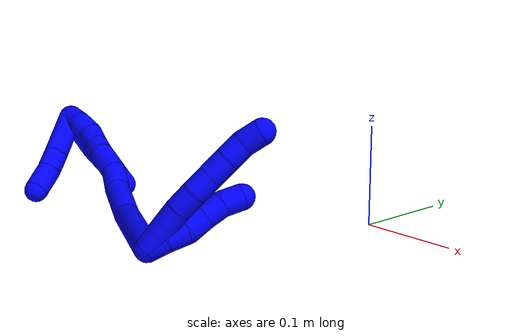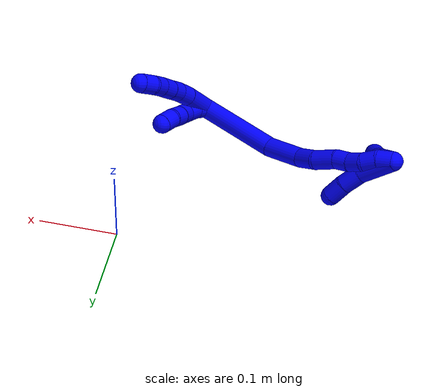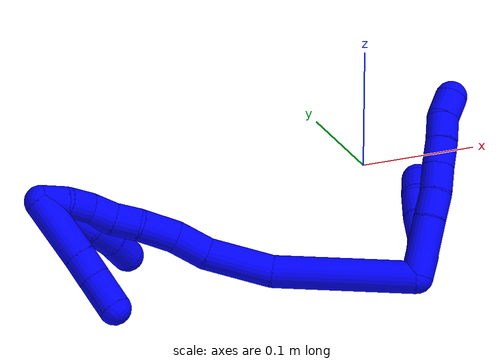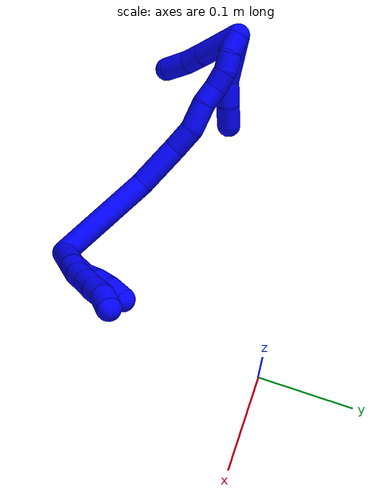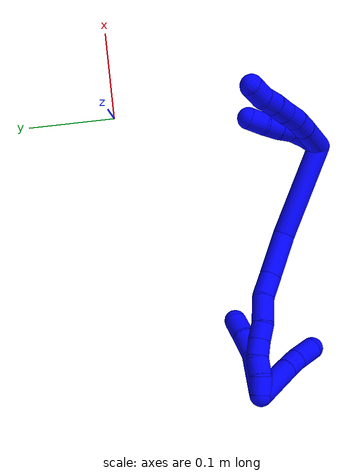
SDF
<sdf version="1.7">
 <world name="default">
  <model name="1">
   <static>0</static>
   <link name="1">
    <collision name="collision-cylinder-e_1_2_8">
     <pose>-0.000392 0.012512 -0.019524 -2.57166 -0.016896 0.057663</pose>
     <geometry><cylinder><radius>0.0125</radius><length>0.046384</length></cylinder></geometry>
     <surface>
      <friction><ode><mu>1.16</mu><mu2>1.16</mu2><slip1>0</slip1><slip2>0</slip2></ode></friction>
      <contact><ode><kp>1e+06</kp><kd>1</kd><max_vel>0</max_vel><min_depth>0.001</min_depth></ode></contact>
     </surface>
    </collision>
    <visual name="visual-cylinder-e_1_2_8">
     <pose>-0.000392 0.012512 -0.019524 -2.57166 -0.016896 0.057663</pose>
     <geometry><cylinder><radius>0.0125</radius><length>0.046384</length></cylinder></geometry>
     <material><ambient>0 0 1 1</ambient></material>
    </visual>
    <collision name="collision-cylinder-e_2_8_9">
     <pose>-0.001337 0.02993 -0.048445 -2.66052 -0.052131 0.211786</pose>
     <geometry><cylinder><radius>0.0125</radius><length>0.021231</length></cylinder></geometry>
     <surface>
      <friction><ode><mu>1.16</mu><mu2>1.16</mu2><slip1>0</slip1><slip2>0</slip2></ode></friction>
      <contact><ode><kp>1e+06</kp><kd>1</kd><max_vel>0</max_vel><min_depth>0.001</min_depth></ode></contact>
     </surface>
    </collision>
    <visual name="visual-cylinder-e_2_8_9">
     <pose>-0.001337 0.02993 -0.048445 -2.66052 -0.052131 0.211786</pose>
     <geometry><cylinder><radius>0.0125</radius><length>0.021231</length></cylinder></geometry>
     <material><ambient>0 0 1 1</ambient></material>
    </visual>
    <collision name="collision-cylinder-e_3_9_10">
     <pose>-0.00404 0.039583 -0.066922 -2.65971 -0.206851 0.799372</pose>
     <geometry><cylinder><radius>0.0125</radius><length>0.020937</length></cylinder></geometry>
     <surface>
      <friction><ode><mu>1.16</mu><mu2>1.16</mu2><slip1>0</slip1><slip2>0</slip2></ode></friction>
      <contact><ode><kp>1e+06</kp><kd>1</kd><max_vel>0</max_vel><min_depth>0.001</min_depth></ode></contact>
     </surface>
    </collision>
    <visual name="visual-cylinder-e_3_9_10">
     <pose>-0.00404 0.039583 -0.066922 -2.65971 -0.206851 0.799372</pose>
     <geometry><cylinder><radius>0.0125</radius><length>0.020937</length></cylinder></geometry>
     <material><ambient>0 0 1 1</ambient></material>
    </visual>
    <collision name="collision-cylinder-e_4_10_11">
     <pose>-0.007861 0.049113 -0.085365 -2.66948 -0.157618 0.634458</pose>
     <geometry><cylinder><radius>0.0125</radius><length>0.021293</length></cylinder></geometry>
     <surface>
      <friction><ode><mu>1.16</mu><mu2>1.16</mu2><slip1>0</slip1><slip2>0</slip2></ode></friction>
      <contact><ode><kp>1e+06</kp><kd>1</kd><max_vel>0</max_vel><min_depth>0.001</min_depth></ode></contact>
     </surface>
    </collision>
    <visual name="visual-cylinder-e_4_10_11">
     <pose>-0.007861 0.049113 -0.085365 -2.66948 -0.157618 0.634458</pose>
     <geometry><cylinder><radius>0.0125</radius><length>0.021293</length></cylinder></geometry>
     <material><ambient>0 0 1 1</ambient></material>
    </visual>
    <collision name="collision-cylinder-e_5_11_12">
     <pose>-0.012011 0.058305 -0.103384 -2.6703 -0.24982 0.963675</pose>
     <geometry><cylinder><radius>0.0125</radius><length>0.02005</length></cylinder></geometry>
     <surface>
      <friction><ode><mu>1.16</mu><mu2>1.16</mu2><slip1>0</slip1><slip2>0</slip2></ode></friction>
      <contact><ode><kp>1e+06</kp><kd>1</kd><max_vel>0</max_vel><min_depth>0.001</min_depth></ode></contact>
     </surface>
    </collision>
    <visual name="visual-cylinder-e_5_11_12">
     <pose>-0.012011 0.058305 -0.103384 -2.6703 -0.24982 0.963675</pose>
     <geometry><cylinder><radius>0.0125</radius><length>0.02005</length></cylinder></geometry>
     <material><ambient>0 0 1 1</ambient></material>
    </visual>
    <collision name="collision-cylinder-e_6_12_6">
     <pose>-0.01496 0.065067 -0.1218 -2.9052 -0.04683 0.389435</pose>
     <geometry><cylinder><radius>0.0125</radius><length>0.020105</length></cylinder></geometry>
     <surface>
      <friction><ode><mu>1.16</mu><mu2>1.16</mu2><slip1>0</slip1><slip2>0</slip2></ode></friction>
      <contact><ode><kp>1e+06</kp><kd>1</kd><max_vel>0</max_vel><min_depth>0.001</min_depth></ode></contact>
     </surface>
    </collision>
    <visual name="visual-cylinder-e_6_12_6">
     <pose>-0.01496 0.065067 -0.1218 -2.9052 -0.04683 0.389435</pose>
     <geometry><cylinder><radius>0.0125</radius><length>0.020105</length></cylinder></geometry>
     <material><ambient>0 0 1 1</ambient></material>
    </visual>
    <collision name="collision-cylinder-e_1_2_13">
     <pose>-0.002218 0.001406 -0.009649 -2.99691 -0.223646 1.99541</pose>
     <geometry><cylinder><radius>0.0125</radius><length>0.02</length></cylinder></geometry>
     <surface>
      <friction><ode><mu>1.16</mu><mu2>1.16</mu2><slip1>0</slip1><slip2>0</slip2></ode></friction>
      <contact><ode><kp>1e+06</kp><kd>1</kd><max_vel>0</max_vel><min_depth>0.001</min_depth></ode></contact>
     </surface>
    </collision>
    <visual name="visual-cylinder-e_1_2_13">
     <pose>-0.002218 0.001406 -0.009649 -2.99691 -0.223646 1.99541</pose>
     <geometry><cylinder><radius>0.0125</radius><length>0.02</length></cylinder></geometry>
     <material><ambient>0 0 1 1</ambient></material>
    </visual>
    <collision name="collision-cylinder-e_2_13_14">
     <pose>-0.008238 0.003368 -0.02853 -3.08143 -0.390051 2.83924</pose>
     <geometry><cylinder><radius>0.0125</radius><length>0.02</length></cylinder></geometry>
     <surface>
      <friction><ode><mu>1.16</mu><mu2>1.16</mu2><slip1>0</slip1><slip2>0</slip2></ode></friction>
      <contact><ode><kp>1e+06</kp><kd>1</kd><max_vel>0</max_vel><min_depth>0.001</min_depth></ode></contact>
     </surface>
    </collision>
    <visual name="visual-cylinder-e_2_13_14">
     <pose>-0.008238 0.003368 -0.02853 -3.08143 -0.390051 2.83924</pose>
     <geometry><cylinder><radius>0.0125</radius><length>0.02</length></cylinder></geometry>
     <material><ambient>0 0 1 1</ambient></material>
    </visual>
    <collision name="collision-cylinder-e_3_14_15">
     <pose>-0.017098 0.007351 -0.045679 -2.73312 -0.53028 1.8383</pose>
     <geometry><cylinder><radius>0.0125</radius><length>0.02</length></cylinder></geometry>
     <surface>
      <friction><ode><mu>1.16</mu><mu2>1.16</mu2><slip1>0</slip1><slip2>0</slip2></ode></friction>
      <contact><ode><kp>1e+06</kp><kd>1</kd><max_vel>0</max_vel><min_depth>0.001</min_depth></ode></contact>
     </surface>
    </collision>
    <visual name="visual-cylinder-e_3_14_15">
     <pose>-0.017098 0.007351 -0.045679 -2.73312 -0.53028 1.8383</pose>
     <geometry><cylinder><radius>0.0125</radius><length>0.02</length></cylinder></geometry>
     <material><ambient>0 0 1 1</ambient></material>
    </visual>
    <collision name="collision-cylinder-e_4_15_16">
     <pose>-0.026486 0.013578 -0.062164 -2.82559 -0.447842 1.92066</pose>
     <geometry><cylinder><radius>0.0125</radius><length>0.02</length></cylinder></geometry>
     <surface>
      <friction><ode><mu>1.16</mu><mu2>1.16</mu2><slip1>0</slip1><slip2>0</slip2></ode></friction>
      <contact><ode><kp>1e+06</kp><kd>1</kd><max_vel>0</max_vel><min_depth>0.001</min_depth></ode></contact>
     </surface>
    </collision>
    <visual name="visual-cylinder-e_4_15_16">
     <pose>-0.026486 0.013578 -0.062164 -2.82559 -0.447842 1.92066</pose>
     <geometry><cylinder><radius>0.0125</radius><length>0.02</length></cylinder></geometry>
     <material><ambient>0 0 1 1</ambient></material>
    </visual>
    <collision name="collision-cylinder-e_5_16_5">
     <pose>-0.035297 0.016427 -0.079671 -3.13626 -0.464571 3.11903</pose>
     <geometry><cylinder><radius>0.0125</radius><length>0.02</length></cylinder></geometry>
     <surface>
      <friction><ode><mu>1.16</mu><mu2>1.16</mu2><slip1>0</slip1><slip2>0</slip2></ode></friction>
      <contact><ode><kp>1e+06</kp><kd>1</kd><max_vel>0</max_vel><min_depth>0.001</min_depth></ode></contact>
     </surface>
    </collision>
    <visual name="visual-cylinder-e_5_16_5">
     <pose>-0.035297 0.016427 -0.079671 -3.13626 -0.464571 3.11903</pose>
     <geometry><cylinder><radius>0.0125</radius><length>0.02</length></cylinder></geometry>
     <material><ambient>0 0 1 1</ambient></material>
    </visual>
    <collision name="collision-cylinder-e_1_2_17">
     <pose>-0.04838 0.015195 0.021436 -0.616645 -1.07326 0.374459</pose>
     <geometry><cylinder><radius>0.0125</radius><length>0.11011</length></cylinder></geometry>
     <surface>
      <friction><ode><mu>1.16</mu><mu2>1.16</mu2><slip1>0</slip1><slip2>0</slip2></ode></friction>
      <contact><ode><kp>1e+06</kp><kd>1</kd><max_vel>0</max_vel><min_depth>0.001</min_depth></ode></contact>
     </surface>
    </collision>
    <visual name="visual-cylinder-e_1_2_17">
     <pose>-0.04838 0.015195 0.021436 -0.616645 -1.07326 0.374459</pose>
     <geometry><cylinder><radius>0.0125</radius><length>0.11011</length></cylinder></geometry>
     <material><ambient>0 0 1 1</ambient></material>
    </visual>
    <collision name="collision-cylinder-e_2_17_18">
     <pose>-0.117555 0.043529 0.050747 -1.03087 -0.935939 0.55773</pose>
     <geometry><cylinder><radius>0.0125</radius><length>0.051656</length></cylinder></geometry>
     <surface>
      <friction><ode><mu>1.16</mu><mu2>1.16</mu2><slip1>0</slip1><slip2>0</slip2></ode></friction>
      <contact><ode><kp>1e+06</kp><kd>1</kd><max_vel>0</max_vel><min_depth>0.001</min_depth></ode></contact>
     </surface>
    </collision>
    <visual name="visual-cylinder-e_2_17_18">
     <pose>-0.117555 0.043529 0.050747 -1.03087 -0.935939 0.55773</pose>
     <geometry><cylinder><radius>0.0125</radius><length>0.051656</length></cylinder></geometry>
     <material><ambient>0 0 1 1</ambient></material>
    </visual>
    <collision name="collision-cylinder-e_3_18_19">
     <pose>-0.148312 0.065984 0.060829 -1.3381 -0.80523 0.649637</pose>
     <geometry><cylinder><radius>0.0125</radius><length>0.027633</length></cylinder></geometry>
     <surface>
      <friction><ode><mu>1.16</mu><mu2>1.16</mu2><slip1>0</slip1><slip2>0</slip2></ode></friction>
      <contact><ode><kp>1e+06</kp><kd>1</kd><max_vel>0</max_vel><min_depth>0.001</min_depth></ode></contact>
     </surface>
    </collision>
    <visual name="visual-cylinder-e_3_18_19">
     <pose>-0.148312 0.065984 0.060829 -1.3381 -0.80523 0.649637</pose>
     <geometry><cylinder><radius>0.0125</radius><length>0.027633</length></cylinder></geometry>
     <material><ambient>0 0 1 1</ambient></material>
    </visual>
    <collision name="collision-cylinder-e_4_19_20">
     <pose>-0.166973 0.085902 0.069565 -1.01886 -0.609833 0.348069</pose>
     <geometry><cylinder><radius>0.0125</radius><length>0.030377</length></cylinder></geometry>
     <surface>
      <friction><ode><mu>1.16</mu><mu2>1.16</mu2><slip1>0</slip1><slip2>0</slip2></ode></friction>
      <contact><ode><kp>1e+06</kp><kd>1</kd><max_vel>0</max_vel><min_depth>0.001</min_depth></ode></contact>
     </surface>
    </collision>
    <visual name="visual-cylinder-e_4_19_20">
     <pose>-0.166973 0.085902 0.069565 -1.01886 -0.609833 0.348069</pose>
     <geometry><cylinder><radius>0.0125</radius><length>0.030377</length></cylinder></geometry>
     <material><ambient>0 0 1 1</ambient></material>
    </visual>
    <collision name="collision-cylinder-e_5_20_21">
     <pose>-0.183152 0.10195 0.079995 -0.94926 -0.840457 0.451361</pose>
     <geometry><cylinder><radius>0.0125</radius><length>0.020084</length></cylinder></geometry>
     <surface>
      <friction><ode><mu>1.16</mu><mu2>1.16</mu2><slip1>0</slip1><slip2>0</slip2></ode></friction>
      <contact><ode><kp>1e+06</kp><kd>1</kd><max_vel>0</max_vel><min_depth>0.001</min_depth></ode></contact>
     </surface>
    </collision>
    <visual name="visual-cylinder-e_5_20_21">
     <pose>-0.183152 0.10195 0.079995 -0.94926 -0.840457 0.451361</pose>
     <geometry><cylinder><radius>0.0125</radius><length>0.020084</length></cylinder></geometry>
     <material><ambient>0 0 1 1</ambient></material>
    </visual>
    <collision name="collision-cylinder-e_6_21_22">
     <pose>-0.196855 0.11452 0.087169 -1.13996 -0.670855 0.439644</pose>
     <geometry><cylinder><radius>0.0125</radius><length>0.020017</length></cylinder></geometry>
     <surface>
      <friction><ode><mu>1.16</mu><mu2>1.16</mu2><slip1>0</slip1><slip2>0</slip2></ode></friction>
      <contact><ode><kp>1e+06</kp><kd>1</kd><max_vel>0</max_vel><min_depth>0.001</min_depth></ode></contact>
     </surface>
    </collision>
    <visual name="visual-cylinder-e_6_21_22">
     <pose>-0.196855 0.11452 0.087169 -1.13996 -0.670855 0.439644</pose>
     <geometry><cylinder><radius>0.0125</radius><length>0.020017</length></cylinder></geometry>
     <material><ambient>0 0 1 1</ambient></material>
    </visual>
    <collision name="collision-cylinder-e_7_22_23">
     <pose>-0.207344 0.128835 0.095943 -0.918032 -0.440432 0.220364</pose>
     <geometry><cylinder><radius>0.0125</radius><length>0.020018</length></cylinder></geometry>
     <surface>
      <friction><ode><mu>1.16</mu><mu2>1.16</mu2><slip1>0</slip1><slip2>0</slip2></ode></friction>
      <contact><ode><kp>1e+06</kp><kd>1</kd><max_vel>0</max_vel><min_depth>0.001</min_depth></ode></contact>
     </surface>
    </collision>
    <visual name="visual-cylinder-e_7_22_23">
     <pose>-0.207344 0.128835 0.095943 -0.918032 -0.440432 0.220364</pose>
     <geometry><cylinder><radius>0.0125</radius><length>0.020018</length></cylinder></geometry>
     <material><ambient>0 0 1 1</ambient></material>
    </visual>
    <collision name="collision-cylinder-e_8_23_1">
     <pose>-0.217781 0.141201 0.10746 -0.710036 -0.66081 0.252944</pose>
     <geometry><cylinder><radius>0.0125</radius><length>0.020106</length></cylinder></geometry>
     <surface>
      <friction><ode><mu>1.16</mu><mu2>1.16</mu2><slip1>0</slip1><slip2>0</slip2></ode></friction>
      <contact><ode><kp>1e+06</kp><kd>1</kd><max_vel>0</max_vel><min_depth>0.001</min_depth></ode></contact>
     </surface>
    </collision>
    <visual name="visual-cylinder-e_8_23_1">
     <pose>-0.217781 0.141201 0.10746 -0.710036 -0.66081 0.252944</pose>
     <geometry><cylinder><radius>0.0125</radius><length>0.020106</length></cylinder></geometry>
     <material><ambient>0 0 1 1</ambient></material>
    </visual>
    <collision name="collision-cylinder-e_1_1_24">
     <pose>-0.215458 0.125613 0.103532 2.01758 0.353445 0.552656</pose>
     <geometry><cylinder><radius>0.0125</radius><length>0.049077</length></cylinder></geometry>
     <surface>
      <friction><ode><mu>1.16</mu><mu2>1.16</mu2><slip1>0</slip1><slip2>0</slip2></ode></friction>
      <contact><ode><kp>1e+06</kp><kd>1</kd><max_vel>0</max_vel><min_depth>0.001</min_depth></ode></contact>
     </surface>
    </collision>
    <visual name="visual-cylinder-e_1_1_24">
     <pose>-0.215458 0.125613 0.103532 2.01758 0.353445 0.552656</pose>
     <geometry><cylinder><radius>0.0125</radius><length>0.049077</length></cylinder></geometry>
     <material><ambient>0 0 1 1</ambient></material>
    </visual>
    <collision name="collision-cylinder-e_2_24_25">
     <pose>-0.205684 0.093059 0.087505 2.04685 0.096155 0.157558</pose>
     <geometry><cylinder><radius>0.0125</radius><length>0.026657</length></cylinder></geometry>
     <surface>
      <friction><ode><mu>1.16</mu><mu2>1.16</mu2><slip1>0</slip1><slip2>0</slip2></ode></friction>
      <contact><ode><kp>1e+06</kp><kd>1</kd><max_vel>0</max_vel><min_depth>0.001</min_depth></ode></contact>
     </surface>
    </collision>
    <visual name="visual-cylinder-e_2_24_25">
     <pose>-0.205684 0.093059 0.087505 2.04685 0.096155 0.157558</pose>
     <geometry><cylinder><radius>0.0125</radius><length>0.026657</length></cylinder></geometry>
     <material><ambient>0 0 1 1</ambient></material>
    </visual>
    <collision name="collision-cylinder-e_3_25_4">
     <pose>-0.203892 0.069872 0.077292 1.91877 0.042269 0.060288</pose>
     <geometry><cylinder><radius>0.0125</radius><length>0.024266</length></cylinder></geometry>
     <surface>
      <friction><ode><mu>1.16</mu><mu2>1.16</mu2><slip1>0</slip1><slip2>0</slip2></ode></friction>
      <contact><ode><kp>1e+06</kp><kd>1</kd><max_vel>0</max_vel><min_depth>0.001</min_depth></ode></contact>
     </surface>
    </collision>
    <visual name="visual-cylinder-e_3_25_4">
     <pose>-0.203892 0.069872 0.077292 1.91877 0.042269 0.060288</pose>
     <geometry><cylinder><radius>0.0125</radius><length>0.024266</length></cylinder></geometry>
     <material><ambient>0 0 1 1</ambient></material>
    </visual>
    <collision name="collision-cylinder-e_1_1_26">
     <pose>-0.207294 0.129239 0.122354 1.0929 0.712087 0.444904</pose>
     <geometry><cylinder><radius>0.0125</radius><length>0.050984</length></cylinder></geometry>
     <surface>
      <friction><ode><mu>1.16</mu><mu2>1.16</mu2><slip1>0</slip1><slip2>0</slip2></ode></friction>
      <contact><ode><kp>1e+06</kp><kd>1</kd><max_vel>0</max_vel><min_depth>0.001</min_depth></ode></contact>
     </surface>
    </collision>
    <visual name="visual-cylinder-e_1_1_26">
     <pose>-0.207294 0.129239 0.122354 1.0929 0.712087 0.444904</pose>
     <geometry><cylinder><radius>0.0125</radius><length>0.050984</length></cylinder></geometry>
     <material><ambient>0 0 1 1</ambient></material>
    </visual>
    <collision name="collision-cylinder-e_2_26_27">
     <pose>-0.183961 0.105243 0.135141 1.05269 0.701837 0.419142</pose>
     <geometry><cylinder><radius>0.0125</radius><length>0.020683</length></cylinder></geometry>
     <surface>
      <friction><ode><mu>1.16</mu><mu2>1.16</mu2><slip1>0</slip1><slip2>0</slip2></ode></friction>
      <contact><ode><kp>1e+06</kp><kd>1</kd><max_vel>0</max_vel><min_depth>0.001</min_depth></ode></contact>
     </surface>
    </collision>
    <visual name="visual-cylinder-e_2_26_27">
     <pose>-0.183961 0.105243 0.135141 1.05269 0.701837 0.419142</pose>
     <geometry><cylinder><radius>0.0125</radius><length>0.020683</length></cylinder></geometry>
     <material><ambient>0 0 1 1</ambient></material>
    </visual>
    <collision name="collision-cylinder-e_3_27_3">
     <pose>-0.167334 0.090411 0.145228 0.91157 0.778725 0.39698</pose>
     <geometry><cylinder><radius>0.0125</radius><length>0.028333</length></cylinder></geometry>
     <surface>
      <friction><ode><mu>1.16</mu><mu2>1.16</mu2><slip1>0</slip1><slip2>0</slip2></ode></friction>
      <contact><ode><kp>1e+06</kp><kd>1</kd><max_vel>0</max_vel><min_depth>0.001</min_depth></ode></contact>
     </surface>
    </collision>
    <visual name="visual-cylinder-e_3_27_3">
     <pose>-0.167334 0.090411 0.145228 0.91157 0.778725 0.39698</pose>
     <geometry><cylinder><radius>0.0125</radius><length>0.028333</length></cylinder></geometry>
     <material><ambient>0 0 1 1</ambient></material>
    </visual>
    <collision name="collision-sphere-3">
     <pose>-0.157384 0.08244 0.151404 0 -0 0</pose>
     <geometry><sphere><radius>0.0125</radius></sphere></geometry>
     <surface>
      <friction><ode><mu>1.16</mu><mu2>1.16</mu2><slip1>0</slip1><slip2>0</slip2></ode></friction>
      <contact><ode><kp>1e+06</kp><kd>1</kd><max_vel>0</max_vel><min_depth>0.001</min_depth></ode></contact>
     </surface>
    </collision>
    <visual name="visual-sphere-3">
     <pose>-0.157384 0.08244 0.151404 0 -0 0</pose>
     <geometry><sphere><radius>0.0125</radius></sphere></geometry>
     <material><ambient>0 0 1 1</ambient></material>
    </visual>
    <collision name="collision-sphere-27">
     <pose>-0.177284 0.098382 0.139052 0 -0 0</pose>
     <geometry><sphere><radius>0.0125</radius></sphere></geometry>
     <surface>
      <friction><ode><mu>1.16</mu><mu2>1.16</mu2><slip1>0</slip1><slip2>0</slip2></ode></friction>
      <contact><ode><kp>1e+06</kp><kd>1</kd><max_vel>0</max_vel><min_depth>0.001</min_depth></ode></contact>
     </surface>
    </collision>
    <visual name="visual-sphere-27">
     <pose>-0.177284 0.098382 0.139052 0 -0 0</pose>
     <geometry><sphere><radius>0.0125</radius></sphere></geometry>
     <material><ambient>0 0 1 1</ambient></material>
    </visual>
    <collision name="collision-sphere-26">
     <pose>-0.190637 0.112104 0.13123 0 -0 0</pose>
     <geometry><sphere><radius>0.0125</radius></sphere></geometry>
     <surface>
      <friction><ode><mu>1.16</mu><mu2>1.16</mu2><slip1>0</slip1><slip2>0</slip2></ode></friction>
      <contact><ode><kp>1e+06</kp><kd>1</kd><max_vel>0</max_vel><min_depth>0.001</min_depth></ode></contact>
     </surface>
    </collision>
    <visual name="visual-sphere-26">
     <pose>-0.190637 0.112104 0.13123 0 -0 0</pose>
     <geometry><sphere><radius>0.0125</radius></sphere></geometry>
     <material><ambient>0 0 1 1</ambient></material>
    </visual>
    <collision name="collision-sphere-4">
     <pose>-0.203379 0.058476 0.073158 0 -0 0</pose>
     <geometry><sphere><radius>0.0125</radius></sphere></geometry>
     <surface>
      <friction><ode><mu>1.16</mu><mu2>1.16</mu2><slip1>0</slip1><slip2>0</slip2></ode></friction>
      <contact><ode><kp>1e+06</kp><kd>1</kd><max_vel>0</max_vel><min_depth>0.001</min_depth></ode></contact>
     </surface>
    </collision>
    <visual name="visual-sphere-4">
     <pose>-0.203379 0.058476 0.073158 0 -0 0</pose>
     <geometry><sphere><radius>0.0125</radius></sphere></geometry>
     <material><ambient>0 0 1 1</ambient></material>
    </visual>
    <collision name="collision-sphere-25">
     <pose>-0.204405 0.081268 0.081426 0 -0 0</pose>
     <geometry><sphere><radius>0.0125</radius></sphere></geometry>
     <surface>
      <friction><ode><mu>1.16</mu><mu2>1.16</mu2><slip1>0</slip1><slip2>0</slip2></ode></friction>
      <contact><ode><kp>1e+06</kp><kd>1</kd><max_vel>0</max_vel><min_depth>0.001</min_depth></ode></contact>
     </surface>
    </collision>
    <visual name="visual-sphere-25">
     <pose>-0.204405 0.081268 0.081426 0 -0 0</pose>
     <geometry><sphere><radius>0.0125</radius></sphere></geometry>
     <material><ambient>0 0 1 1</ambient></material>
    </visual>
    <collision name="collision-sphere-24">
     <pose>-0.206964 0.104851 0.093585 0 -0 0</pose>
     <geometry><sphere><radius>0.0125</radius></sphere></geometry>
     <surface>
      <friction><ode><mu>1.16</mu><mu2>1.16</mu2><slip1>0</slip1><slip2>0</slip2></ode></friction>
      <contact><ode><kp>1e+06</kp><kd>1</kd><max_vel>0</max_vel><min_depth>0.001</min_depth></ode></contact>
     </surface>
    </collision>
    <visual name="visual-sphere-24">
     <pose>-0.206964 0.104851 0.093585 0 -0 0</pose>
     <geometry><sphere><radius>0.0125</radius></sphere></geometry>
     <material><ambient>0 0 1 1</ambient></material>
    </visual>
    <collision name="collision-sphere-1">
     <pose>-0.223951 0.146375 0.113479 0 -0 0</pose>
     <geometry><sphere><radius>0.0125</radius></sphere></geometry>
     <surface>
      <friction><ode><mu>1.16</mu><mu2>1.16</mu2><slip1>0</slip1><slip2>0</slip2></ode></friction>
      <contact><ode><kp>1e+06</kp><kd>1</kd><max_vel>0</max_vel><min_depth>0.001</min_depth></ode></contact>
     </surface>
    </collision>
    <visual name="visual-sphere-1">
     <pose>-0.223951 0.146375 0.113479 0 -0 0</pose>
     <geometry><sphere><radius>0.0125</radius></sphere></geometry>
     <material><ambient>0 0 1 1</ambient></material>
    </visual>
    <collision name="collision-sphere-23">
     <pose>-0.211611 0.136028 0.101442 0 -0 0</pose>
     <geometry><sphere><radius>0.0125</radius></sphere></geometry>
     <surface>
      <friction><ode><mu>1.16</mu><mu2>1.16</mu2><slip1>0</slip1><slip2>0</slip2></ode></friction>
      <contact><ode><kp>1e+06</kp><kd>1</kd><max_vel>0</max_vel><min_depth>0.001</min_depth></ode></contact>
     </surface>
    </collision>
    <visual name="visual-sphere-23">
     <pose>-0.211611 0.136028 0.101442 0 -0 0</pose>
     <geometry><sphere><radius>0.0125</radius></sphere></geometry>
     <material><ambient>0 0 1 1</ambient></material>
    </visual>
    <collision name="collision-sphere-22">
     <pose>-0.203077 0.121643 0.090443 0 -0 0</pose>
     <geometry><sphere><radius>0.0125</radius></sphere></geometry>
     <surface>
      <friction><ode><mu>1.16</mu><mu2>1.16</mu2><slip1>0</slip1><slip2>0</slip2></ode></friction>
      <contact><ode><kp>1e+06</kp><kd>1</kd><max_vel>0</max_vel><min_depth>0.001</min_depth></ode></contact>
     </surface>
    </collision>
    <visual name="visual-sphere-22">
     <pose>-0.203077 0.121643 0.090443 0 -0 0</pose>
     <geometry><sphere><radius>0.0125</radius></sphere></geometry>
     <material><ambient>0 0 1 1</ambient></material>
    </visual>
    <collision name="collision-sphere-21">
     <pose>-0.190633 0.107396 0.083895 0 -0 0</pose>
     <geometry><sphere><radius>0.0125</radius></sphere></geometry>
     <surface>
      <friction><ode><mu>1.16</mu><mu2>1.16</mu2><slip1>0</slip1><slip2>0</slip2></ode></friction>
      <contact><ode><kp>1e+06</kp><kd>1</kd><max_vel>0</max_vel><min_depth>0.001</min_depth></ode></contact>
     </surface>
    </collision>
    <visual name="visual-sphere-21">
     <pose>-0.190633 0.107396 0.083895 0 -0 0</pose>
     <geometry><sphere><radius>0.0125</radius></sphere></geometry>
     <material><ambient>0 0 1 1</ambient></material>
    </visual>
    <collision name="collision-sphere-12">
     <pose>-0.014489 0.062715 -0.112038 0 -0 0</pose>
     <geometry><sphere><radius>0.0125</radius></sphere></geometry>
     <surface>
      <friction><ode><mu>1.16</mu><mu2>1.16</mu2><slip1>0</slip1><slip2>0</slip2></ode></friction>
      <contact><ode><kp>1e+06</kp><kd>1</kd><max_vel>0</max_vel><min_depth>0.001</min_depth></ode></contact>
     </surface>
    </collision>
    <visual name="visual-sphere-12">
     <pose>-0.014489 0.062715 -0.112038 0 -0 0</pose>
     <geometry><sphere><radius>0.0125</radius></sphere></geometry>
     <material><ambient>0 0 1 1</ambient></material>
    </visual>
    <collision name="collision-sphere-11">
     <pose>-0.009532 0.053895 -0.094729 0 -0 0</pose>
     <geometry><sphere><radius>0.0125</radius></sphere></geometry>
     <surface>
      <friction><ode><mu>1.16</mu><mu2>1.16</mu2><slip1>0</slip1><slip2>0</slip2></ode></friction>
      <contact><ode><kp>1e+06</kp><kd>1</kd><max_vel>0</max_vel><min_depth>0.001</min_depth></ode></contact>
     </surface>
    </collision>
    <visual name="visual-sphere-11">
     <pose>-0.009532 0.053895 -0.094729 0 -0 0</pose>
     <geometry><sphere><radius>0.0125</radius></sphere></geometry>
     <material><ambient>0 0 1 1</ambient></material>
    </visual>
    <collision name="collision-sphere-10">
     <pose>-0.00619 0.044332 -0.076001 0 -0 0</pose>
     <geometry><sphere><radius>0.0125</radius></sphere></geometry>
     <surface>
      <friction><ode><mu>1.16</mu><mu2>1.16</mu2><slip1>0</slip1><slip2>0</slip2></ode></friction>
      <contact><ode><kp>1e+06</kp><kd>1</kd><max_vel>0</max_vel><min_depth>0.001</min_depth></ode></contact>
     </surface>
    </collision>
    <visual name="visual-sphere-10">
     <pose>-0.00619 0.044332 -0.076001 0 -0 0</pose>
     <geometry><sphere><radius>0.0125</radius></sphere></geometry>
     <material><ambient>0 0 1 1</ambient></material>
    </visual>
    <collision name="collision-sphere-9">
     <pose>-0.00189 0.034835 -0.057843 0 -0 0</pose>
     <geometry><sphere><radius>0.0125</radius></sphere></geometry>
     <surface>
      <friction><ode><mu>1.16</mu><mu2>1.16</mu2><slip1>0</slip1><slip2>0</slip2></ode></friction>
      <contact><ode><kp>1e+06</kp><kd>1</kd><max_vel>0</max_vel><min_depth>0.001</min_depth></ode></contact>
     </surface>
    </collision>
    <visual name="visual-sphere-9">
     <pose>-0.00189 0.034835 -0.057843 0 -0 0</pose>
     <geometry><sphere><radius>0.0125</radius></sphere></geometry>
     <material><ambient>0 0 1 1</ambient></material>
    </visual>
    <collision name="collision-sphere-2">
     <geometry><sphere><radius>0.0125</radius></sphere></geometry>
     <surface>
      <friction><ode><mu>1.16</mu><mu2>1.16</mu2><slip1>0</slip1><slip2>0</slip2></ode></friction>
      <contact><ode><kp>1e+06</kp><kd>1</kd><max_vel>0</max_vel><min_depth>0.001</min_depth></ode></contact>
     </surface>
    </collision>
    <visual name="visual-sphere-2">
     <geometry><sphere><radius>0.0125</radius></sphere></geometry>
     <material><ambient>0 0 1 1</ambient></material>
    </visual>
    <collision name="collision-sphere-19">
     <pose>-0.158274 0.0753 0.063037 0 -0 0</pose>
     <geometry><sphere><radius>0.0125</radius></sphere></geometry>
     <surface>
      <friction><ode><mu>1.16</mu><mu2>1.16</mu2><slip1>0</slip1><slip2>0</slip2></ode></friction>
      <contact><ode><kp>1e+06</kp><kd>1</kd><max_vel>0</max_vel><min_depth>0.001</min_depth></ode></contact>
     </surface>
    </collision>
    <visual name="visual-sphere-19">
     <pose>-0.158274 0.0753 0.063037 0 -0 0</pose>
     <geometry><sphere><radius>0.0125</radius></sphere></geometry>
     <material><ambient>0 0 1 1</ambient></material>
    </visual>
    <collision name="collision-sphere-8">
     <pose>-0.000784 0.025024 -0.039047 0 -0 0</pose>
     <geometry><sphere><radius>0.0125</radius></sphere></geometry>
     <surface>
      <friction><ode><mu>1.16</mu><mu2>1.16</mu2><slip1>0</slip1><slip2>0</slip2></ode></friction>
      <contact><ode><kp>1e+06</kp><kd>1</kd><max_vel>0</max_vel><min_depth>0.001</min_depth></ode></contact>
     </surface>
    </collision>
    <visual name="visual-sphere-8">
     <pose>-0.000784 0.025024 -0.039047 0 -0 0</pose>
     <geometry><sphere><radius>0.0125</radius></sphere></geometry>
     <material><ambient>0 0 1 1</ambient></material>
    </visual>
    <collision name="collision-sphere-6">
     <pose>-0.01543 0.067419 -0.131563 0 -0 0</pose>
     <geometry><sphere><radius>0.0125</radius></sphere></geometry>
     <surface>
      <friction><ode><mu>1.16</mu><mu2>1.16</mu2><slip1>0</slip1><slip2>0</slip2></ode></friction>
      <contact><ode><kp>1e+06</kp><kd>1</kd><max_vel>0</max_vel><min_depth>0.001</min_depth></ode></contact>
     </surface>
    </collision>
    <visual name="visual-sphere-6">
     <pose>-0.01543 0.067419 -0.131563 0 -0 0</pose>
     <geometry><sphere><radius>0.0125</radius></sphere></geometry>
     <material><ambient>0 0 1 1</ambient></material>
    </visual>
    <collision name="collision-sphere-13">
     <pose>-0.004436 0.002812 -0.019298 0 -0 0</pose>
     <geometry><sphere><radius>0.0125</radius></sphere></geometry>
     <surface>
      <friction><ode><mu>1.16</mu><mu2>1.16</mu2><slip1>0</slip1><slip2>0</slip2></ode></friction>
      <contact><ode><kp>1e+06</kp><kd>1</kd><max_vel>0</max_vel><min_depth>0.001</min_depth></ode></contact>
     </surface>
    </collision>
    <visual name="visual-sphere-13">
     <pose>-0.004436 0.002812 -0.019298 0 -0 0</pose>
     <geometry><sphere><radius>0.0125</radius></sphere></geometry>
     <material><ambient>0 0 1 1</ambient></material>
    </visual>
    <collision name="collision-sphere-14">
     <pose>-0.01204 0.003924 -0.037762 0 -0 0</pose>
     <geometry><sphere><radius>0.0125</radius></sphere></geometry>
     <surface>
      <friction><ode><mu>1.16</mu><mu2>1.16</mu2><slip1>0</slip1><slip2>0</slip2></ode></friction>
      <contact><ode><kp>1e+06</kp><kd>1</kd><max_vel>0</max_vel><min_depth>0.001</min_depth></ode></contact>
     </surface>
    </collision>
    <visual name="visual-sphere-14">
     <pose>-0.01204 0.003924 -0.037762 0 -0 0</pose>
     <geometry><sphere><radius>0.0125</radius></sphere></geometry>
     <material><ambient>0 0 1 1</ambient></material>
    </visual>
    <collision name="collision-sphere-15">
     <pose>-0.022156 0.010777 -0.053596 0 -0 0</pose>
     <geometry><sphere><radius>0.0125</radius></sphere></geometry>
     <surface>
      <friction><ode><mu>1.16</mu><mu2>1.16</mu2><slip1>0</slip1><slip2>0</slip2></ode></friction>
      <contact><ode><kp>1e+06</kp><kd>1</kd><max_vel>0</max_vel><min_depth>0.001</min_depth></ode></contact>
     </surface>
    </collision>
    <visual name="visual-sphere-15">
     <pose>-0.022156 0.010777 -0.053596 0 -0 0</pose>
     <geometry><sphere><radius>0.0125</radius></sphere></geometry>
     <material><ambient>0 0 1 1</ambient></material>
    </visual>
    <collision name="collision-sphere-16">
     <pose>-0.030816 0.01638 -0.070731 0 -0 0</pose>
     <geometry><sphere><radius>0.0125</radius></sphere></geometry>
     <surface>
      <friction><ode><mu>1.16</mu><mu2>1.16</mu2><slip1>0</slip1><slip2>0</slip2></ode></friction>
      <contact><ode><kp>1e+06</kp><kd>1</kd><max_vel>0</max_vel><min_depth>0.001</min_depth></ode></contact>
     </surface>
    </collision>
    <visual name="visual-sphere-16">
     <pose>-0.030816 0.01638 -0.070731 0 -0 0</pose>
     <geometry><sphere><radius>0.0125</radius></sphere></geometry>
     <material><ambient>0 0 1 1</ambient></material>
    </visual>
    <collision name="collision-sphere-5">
     <pose>-0.039777 0.016475 -0.088611 0 -0 0</pose>
     <geometry><sphere><radius>0.0125</radius></sphere></geometry>
     <surface>
      <friction><ode><mu>1.16</mu><mu2>1.16</mu2><slip1>0</slip1><slip2>0</slip2></ode></friction>
      <contact><ode><kp>1e+06</kp><kd>1</kd><max_vel>0</max_vel><min_depth>0.001</min_depth></ode></contact>
     </surface>
    </collision>
    <visual name="visual-sphere-5">
     <pose>-0.039777 0.016475 -0.088611 0 -0 0</pose>
     <geometry><sphere><radius>0.0125</radius></sphere></geometry>
     <material><ambient>0 0 1 1</ambient></material>
    </visual>
    <collision name="collision-sphere-17">
     <pose>-0.09676 0.030391 0.042873 0 -0 0</pose>
     <geometry><sphere><radius>0.0125</radius></sphere></geometry>
     <surface>
      <friction><ode><mu>1.16</mu><mu2>1.16</mu2><slip1>0</slip1><slip2>0</slip2></ode></friction>
      <contact><ode><kp>1e+06</kp><kd>1</kd><max_vel>0</max_vel><min_depth>0.001</min_depth></ode></contact>
     </surface>
    </collision>
    <visual name="visual-sphere-17">
     <pose>-0.09676 0.030391 0.042873 0 -0 0</pose>
     <geometry><sphere><radius>0.0125</radius></sphere></geometry>
     <material><ambient>0 0 1 1</ambient></material>
    </visual>
    <collision name="collision-sphere-18">
     <pose>-0.138351 0.056668 0.058622 0 -0 0</pose>
     <geometry><sphere><radius>0.0125</radius></sphere></geometry>
     <surface>
      <friction><ode><mu>1.16</mu><mu2>1.16</mu2><slip1>0</slip1><slip2>0</slip2></ode></friction>
      <contact><ode><kp>1e+06</kp><kd>1</kd><max_vel>0</max_vel><min_depth>0.001</min_depth></ode></contact>
     </surface>
    </collision>
    <visual name="visual-sphere-18">
     <pose>-0.138351 0.056668 0.058622 0 -0 0</pose>
     <geometry><sphere><radius>0.0125</radius></sphere></geometry>
     <material><ambient>0 0 1 1</ambient></material>
    </visual>
    <collision name="collision-sphere-20">
     <pose>-0.175672 0.096504 0.076094 0 -0 0</pose>
     <geometry><sphere><radius>0.0125</radius></sphere></geometry>
     <surface>
      <friction><ode><mu>1.16</mu><mu2>1.16</mu2><slip1>0</slip1><slip2>0</slip2></ode></friction>
      <contact><ode><kp>1e+06</kp><kd>1</kd><max_vel>0</max_vel><min_depth>0.001</min_depth></ode></contact>
     </surface>
    </collision>
    <visual name="visual-sphere-20">
     <pose>-0.175672 0.096504 0.076094 0 -0 0</pose>
     <geometry><sphere><radius>0.0125</radius></sphere></geometry>
     <material><ambient>0 0 1 1</ambient></material>
    </visual>
    <inertial>
     <pose>-0.105952 0.061588 0.03261 0 -0 0</pose>
     <mass>0.75</mass>
     <inertia>
      <ixx>0.000139</ixx>
      <ixy>0</ixy>
      <ixz>0</ixz>
      <iyy>0.000182</iyy>
      <iyz>0</iyz>
      <izz>6.9e-05</izz>
     </inertia>
    </inertial>
   </link>
   <pose>-0.058528 -0.232267 0.011488 1.93586 -0.134321 -0.964911</pose>
  </model>
 </world>
</sdf>
